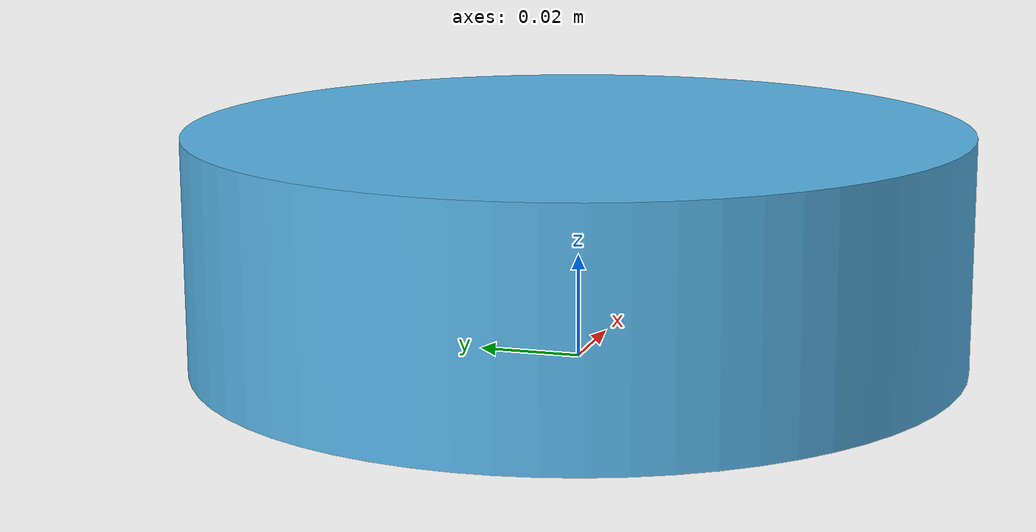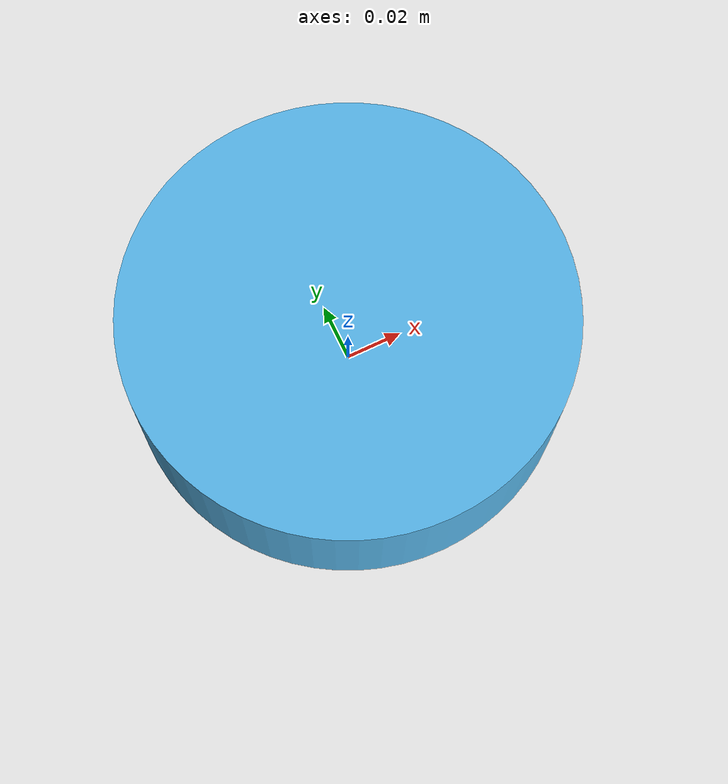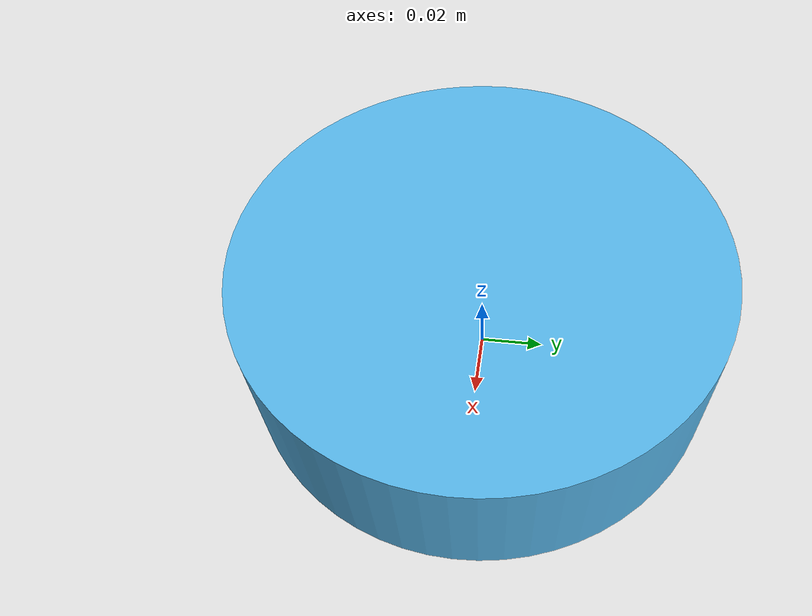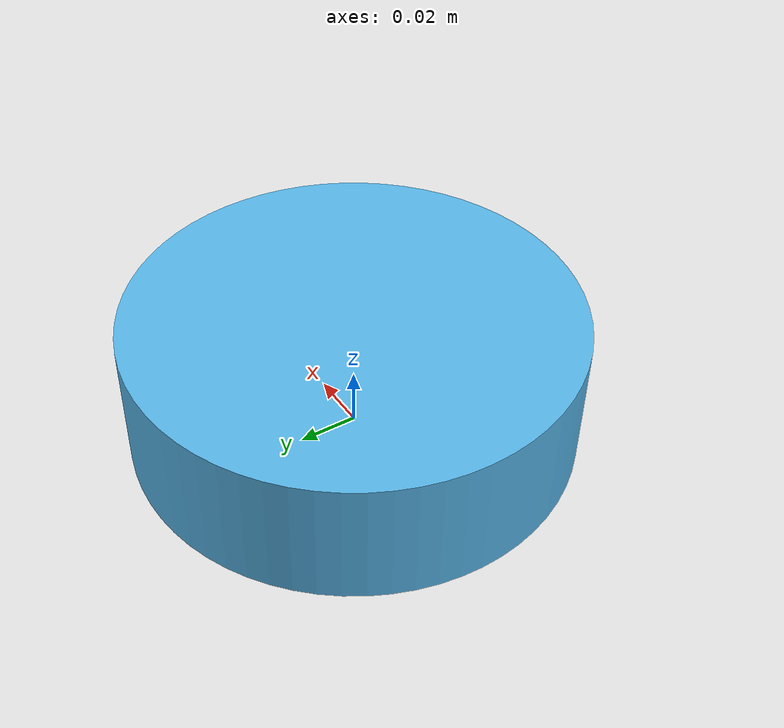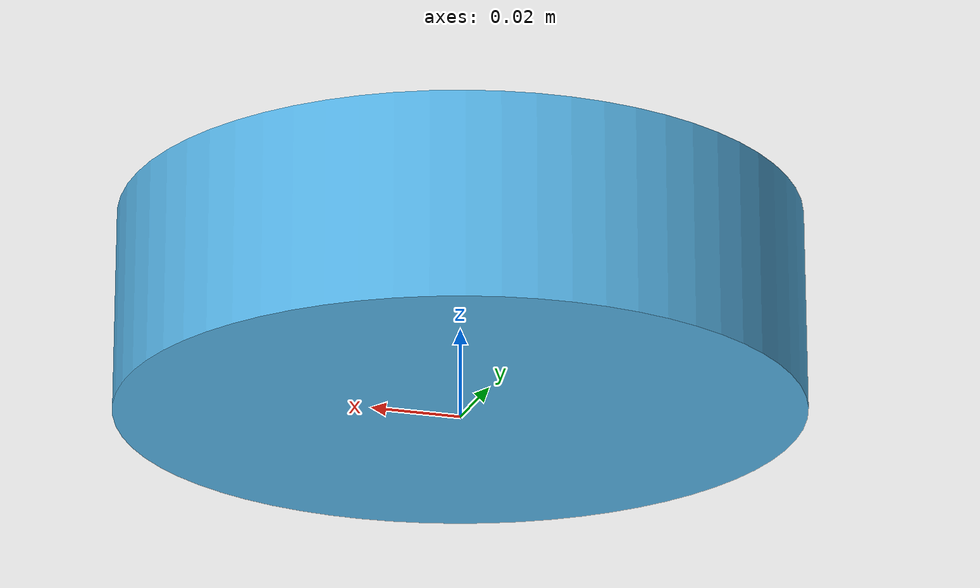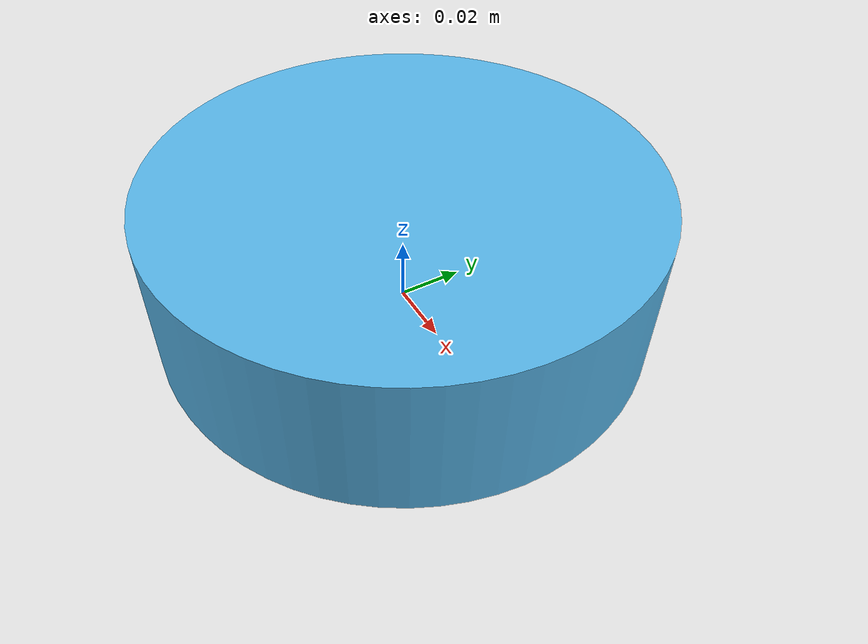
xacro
<?xml version="1.0"?>
<robot name="camera_robot" xmlns:xacro="http://www.ros.org/wiki/xacro">

    <!-- Frame de proyección en el suelo -->
    <link name="base_footprint" />

    <!-- Link principal con tu archivo .stl -->
    <link name="base_link">
        <visual>
            <geometry>
                <mesh filename="package://camera_description/meshes/base.stl" scale="1.0 1.0 1.0"/>
            </geometry>
            <origin xyz="0 0 0" rpy="0 0 0" />
        </visual>
    </link>

    <!-- Joint que conecta ambos para que robot_state_publisher publique el /tf -->
    <joint name="base_joint" type="fixed">
        <parent link="base_footprint" />
        <child link="base_link" />
        <origin xyz="0 0 0" rpy="0 0 0"/>
    </joint>

</robot>
